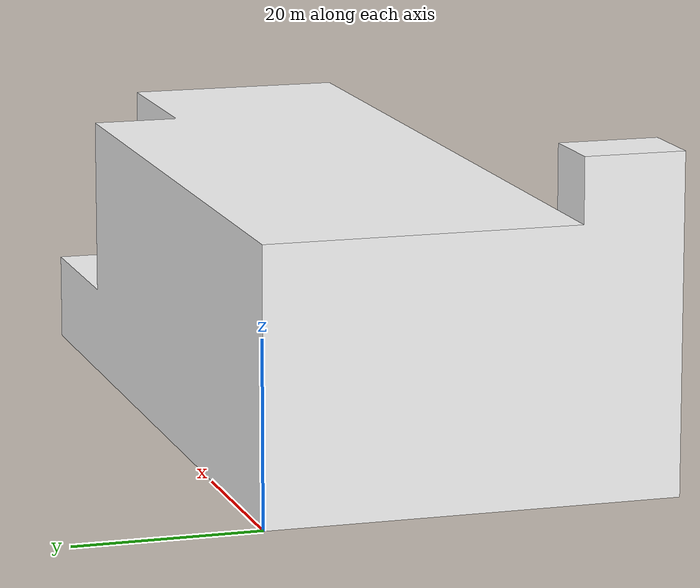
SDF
<?xml version="1.0" ?>
<sdf version="1.5">
  <model name="Goheung Building 1">
    <static>true</static>
    <link name="link">
      <visual name="visual">
        <geometry>
          <mesh>
            <uri>model://Goheung_Building_1/meshes/Building1.dae</uri>
          </mesh>
        </geometry>
      </visual>
    </link>
  </model>
</sdf>
